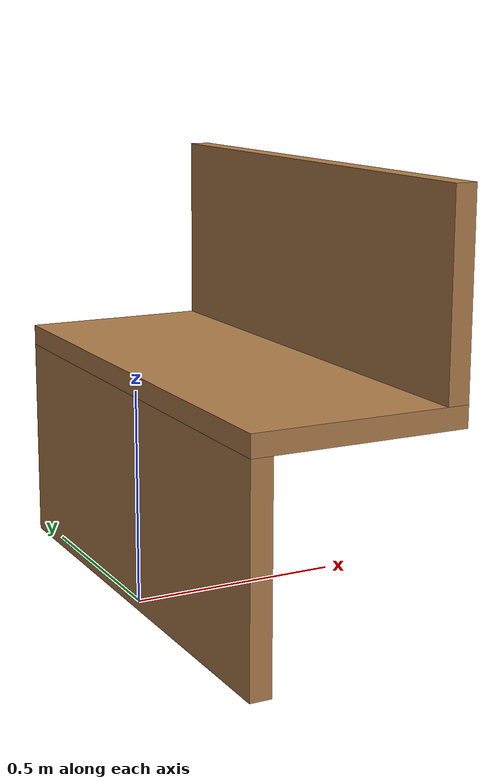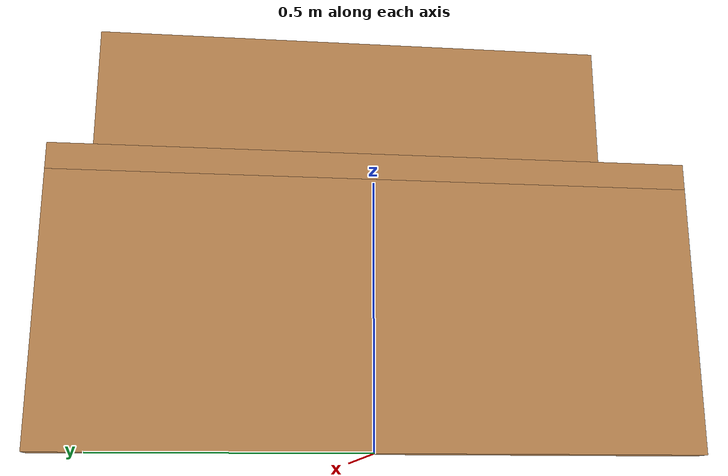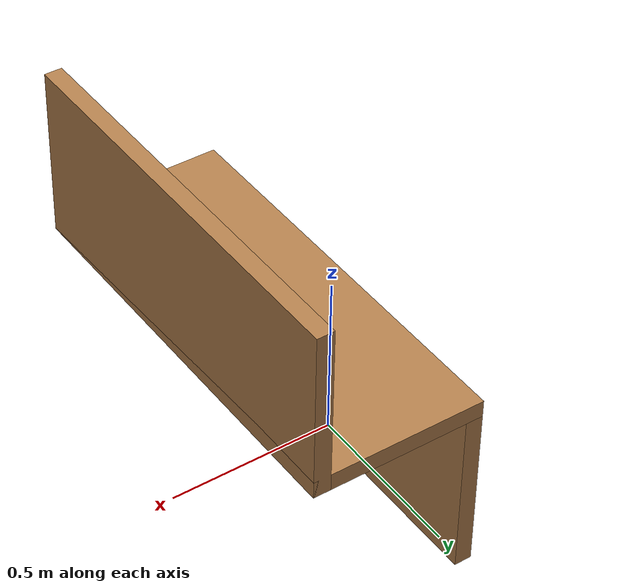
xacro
<?xml version="1.0"?>
<robot name="table" xmlns:xacro="http://www.ros.org/wiki/xacro">

  <xacro:property name="table_height" value="0.9" />
  <xacro:property name="table_width" value="1.2" />
  <xacro:property name="table_depth" value="0.5" />

  <xacro:property name="table_x" value="0.0" />
  <xacro:property name="table_y" value="0.0" />
  <xacro:property name="table_z" value="0.0" />
  <xacro:property name="table_top_thickness" value="0.05"/>

  <xacro:property name="M_PI" value="3.1415926535897931" />

  <link name ="world" />

  <link name="leg_1">
    <inertial>
      <mass value="1.0" />
      <origin xyz="${table_x} ${table_y} ${table_z}" rpy="0 0 0"/>
      <inertia ixx="1" ixy="0" ixz="0" iyy="1" iyz="0" izz="1" />
    </inertial>
    <visual>
      <origin xyz="${table_x} ${table_y} ${table_z}" rpy="0 ${M_PI /2} 0"/>
      <geometry>
        <box size="${table_depth}  ${table_width} ${table_top_thickness}" />
      </geometry>
    </visual>
    <collision>
       <origin xyz="${table_x} ${table_y} ${table_z}" rpy="0 ${M_PI /2} 0"/>
      <geometry>
        <box size="${table_depth} ${table_width} ${table_top_thickness}" />
      </geometry>
    </collision>
  </link>
  <joint name="table_fix1" type="fixed">
     <parent link="world"/>
     <child link="leg_1"/>
     <origin xyz="0 0 ${table_depth/2}" rpy="0 0 0" />
  </joint>
  <gazebo reference="leg_1">
    <material>Gazebo/LightWood</material>
    <mu1>50.0</mu1>
    <mu2>50.0</mu2>
    <kp>1000000.0</kp>
    <kd>1.0</kd>
  </gazebo>

  <link name="table_top_link">
    <inertial>
      <mass value="1.0" />
      <origin xyz="0 0 0" rpy="0 0 0"/>
      <inertia ixx="1" ixy="0"  ixz="0" iyy="1" iyz="0"  izz="1" />
    </inertial>
    <visual>
       <origin xyz="${table_depth/2-table_top_thickness/2} 0 -${table_depth/2-table_top_thickness/2}" rpy="0 0 ${M_PI /2}"/>
      <geometry>
        <box size="${table_width} ${table_depth} ${table_top_thickness}" />
      </geometry>
    </visual>
    <collision>
      <origin xyz="${table_depth/2-table_top_thickness/2} 0 -${table_depth/2-table_top_thickness/2}" rpy="0 0 ${M_PI /2}"/>
      <geometry>
        <box size="${table_width} ${table_depth} ${table_top_thickness}" />
      </geometry>
    </collision>
  </link>
  <joint name="table_fix2" type="fixed">
    <parent link="leg_1"/>
    <child link="table_top_link"/>
    <origin xyz="0 0 ${table_depth}" rpy="0 0 0" />
  </joint>
  <gazebo reference="table_top_link">
    <material>Gazebo/LightWood</material>
    <mu1>50.0</mu1>
    <mu2>50.0</mu2>
    <kp>1000000.0</kp>
    <kd>1.0</kd>
  </gazebo>

  <link name="leg_2">
    <inertial>
      <mass value="1.0" />
      <origin xyz="${table_x} ${table_y} ${table_z}" rpy="0 0 0"/>
      <inertia ixx="1" ixy="0" ixz="0" iyy="1" iyz="0" izz="1" />
    </inertial>
    <visual>
      <origin xyz="${table_x} ${table_y} ${table_z}" rpy="0 0 0"/>
      <geometry>
        <box size="${table_width} ${table_depth} ${table_top_thickness}" />
      </geometry>
    </visual>
    <collision>
       <origin xyz="${table_x} ${table_y} ${table_z}" rpy="0 0 0"/>
      <geometry>
        <box size="${table_width} ${table_depth} ${table_top_thickness}" />
      </geometry>
    </collision>
  </link>
  <joint name="table_fix3" type="fixed">
    <parent link="table_top_link"/>
    <child link="leg_2"/>
    <origin xyz="${table_depth-table_top_thickness} 0 0" rpy="${M_PI /2} 0 ${M_PI /2}" />
  </joint>
  <gazebo reference="leg_2">
    <material>Gazebo/LightWood</material>
    <mu1>50.0</mu1>
    <mu2>50.0</mu2>
    <kp>1000000.0</kp>
    <kd>1.0</kd>
  </gazebo>

</robot>
